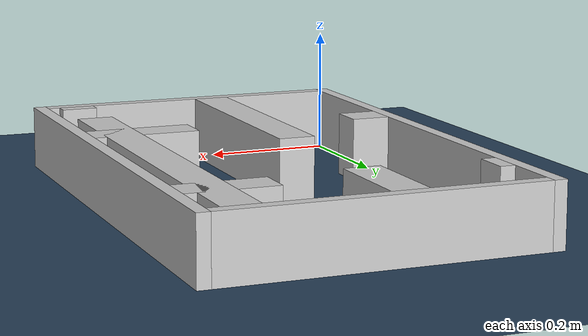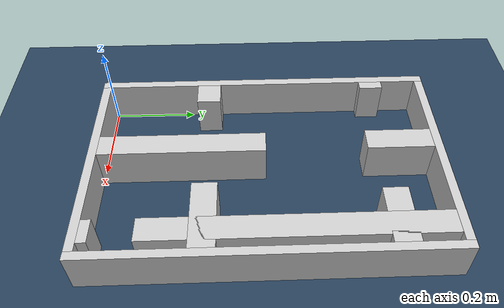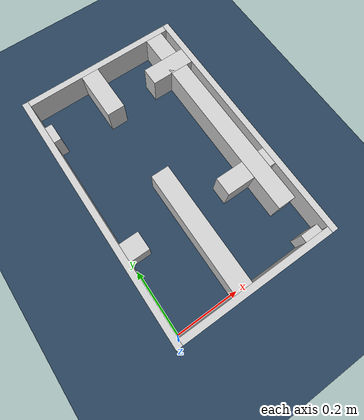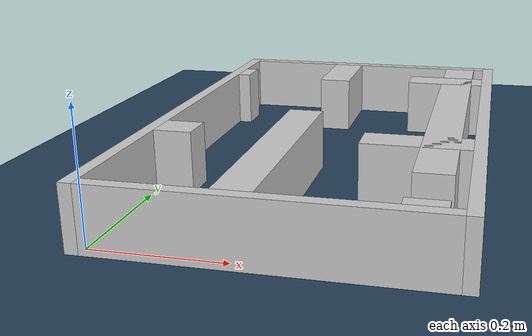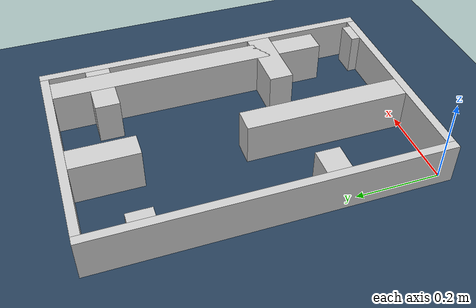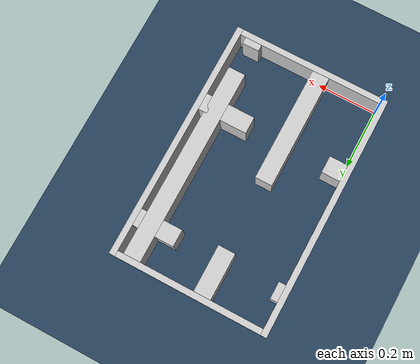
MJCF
<?xml version="1.0" ?>
<mujoco model="generated_real_template">
  <compiler angle="degree"/>
  <option timestep="0.002" integrator="implicitfast" iterations="100" cone="elliptic"/>
  <default>
    <geom density="1"/>
  </default>
  <asset>
    <texture builtin="gradient" height="3072" rgb1="0.3 0.5 0.7" rgb2="0 0 0" type="skybox" width="512"/>
    <texture builtin="checker" height="300" mark="edge" markrgb="0.8 0.8 0.8" name="groundplane" rgb1="0.2 0.3 0.4" rgb2="0.1 0.2 0.3" type="2d" width="300"/>
    <material name="groundplane" reflectance="0.2" texrepeat="5 5" texture="groundplane" texuniform="true"/>
  </asset>
  <worldbody>
    <light dir="0 0 -1" directional="true" pos="0 0 1.5"/>
    <geom name="floor" type="plane" condim="4" friction="0.5 0.005 0.001" material="groundplane" size="0 0 0.05"/>
    <body name="walls">
      <geom name="wall_boundary_left" type="box" condim="4" friction="1.0 0.005 0.0001" rgba="0.8 0.8 0.8 1" pos="-0.010000 0.387500 0.050000" euler="0 0 0.000000" size="0.010000 0.407500 0.050000"/>
      <geom name="wall_boundary_right" type="box" condim="4" friction="1.0 0.005 0.0001" rgba="0.8 0.8 0.8 1" pos="0.500000 0.387500 0.050000" euler="0 0 0.000000" size="0.010000 0.407500 0.050000"/>
      <geom name="wall_boundary_bottom" type="box" condim="4" friction="1.0 0.005 0.0001" rgba="0.8 0.8 0.8 1" pos="0.245000 -0.010000 0.050000" euler="0 0 0.000000" size="0.245000 0.010000 0.050000"/>
      <geom name="wall_boundary_top" type="box" condim="4" friction="1.0 0.005 0.0001" rgba="0.8 0.8 0.8 1" pos="0.245000 0.785000 0.050000" euler="0 0 0.000000" size="0.245000 0.010000 0.050000"/>
      <geom name="wall_inner_1_1" type="box" condim="4" friction="1.0 0.005 0.0001" rgba="0.8 0.8 0.8 1" pos="0.011772 0.660197 0.050000" euler="0 0 0.000000" size="0.011772 0.028500 0.050000"/>
      <geom name="wall_inner_1_2" type="box" condim="4" friction="1.0 0.005 0.0001" rgba="0.8 0.8 0.8 1" pos="0.420134 0.660197 0.050000" euler="0 0 0.000000" size="0.069866 0.028500 0.050000"/>
      <geom name="wall_inner_2_1" type="box" condim="4" friction="1.0 0.005 0.0001" rgba="0.8 0.8 0.8 1" pos="0.030803 0.249487 0.050000" euler="0 0 0.000000" size="0.030803 0.028500 0.050000"/>
      <geom name="wall_inner_2_2" type="box" condim="4" friction="1.0 0.005 0.0001" rgba="0.8 0.8 0.8 1" pos="0.406737 0.249487 0.050000" euler="0 0 0.000000" size="0.083263 0.028500 0.050000"/>
      <geom name="wall_inner_3_1" type="box" condim="4" friction="1.0 0.005 0.0001" rgba="0.8 0.8 0.8 1" pos="0.442454 0.011006 0.050000" euler="0 0 90.000000" size="0.011006 0.028500 0.050000"/>
      <geom name="wall_inner_3_2" type="box" condim="4" friction="1.0 0.005 0.0001" rgba="0.8 0.8 0.8 1" pos="0.442454 0.443435 0.050000" euler="0 0 90.000000" size="0.331565 0.028500 0.050000"/>
      <geom name="wall_inner_4_1" type="box" condim="4" friction="1.0 0.005 0.0001" rgba="0.8 0.8 0.8 1" pos="0.204515 0.193269 0.050000" euler="0 0 90.000000" size="0.193269 0.028500 0.050000"/>
      <geom name="wall_inner_4_2" type="box" condim="4" friction="1.0 0.005 0.0001" rgba="0.8 0.8 0.8 1" pos="0.204515 0.697563 0.050000" euler="0 0 90.000000" size="0.077437 0.028500 0.050000"/>
    </body>
  </worldbody>
</mujoco>
